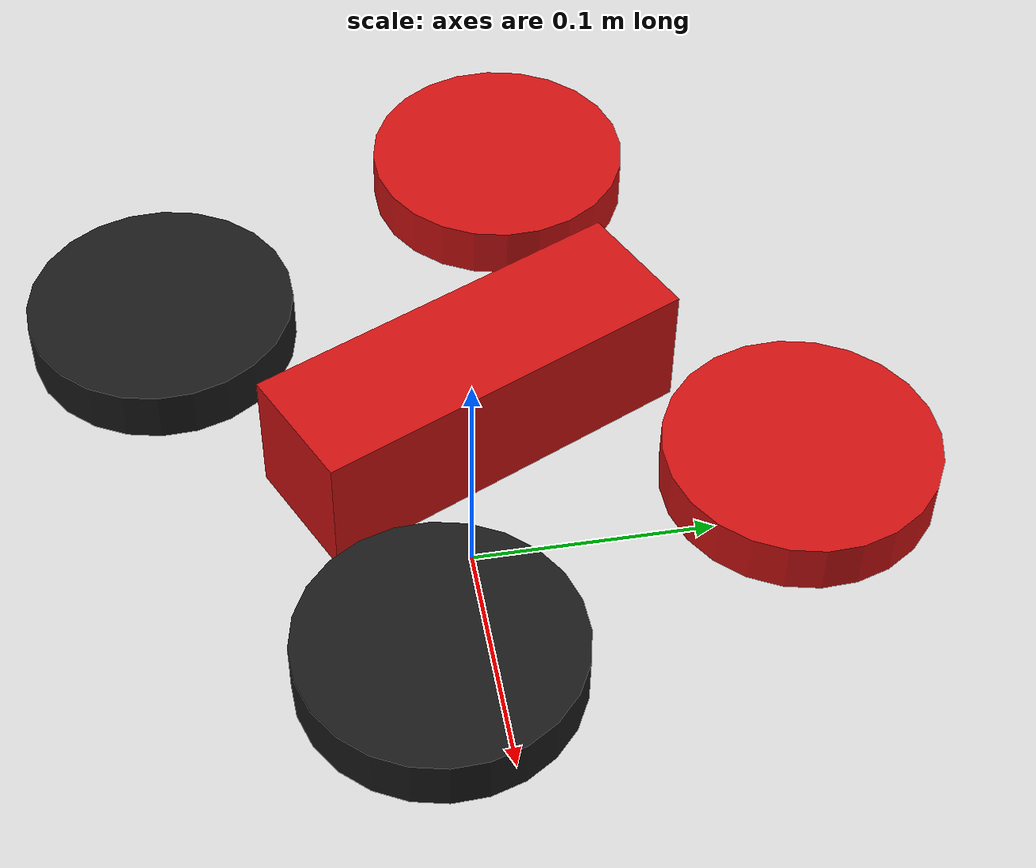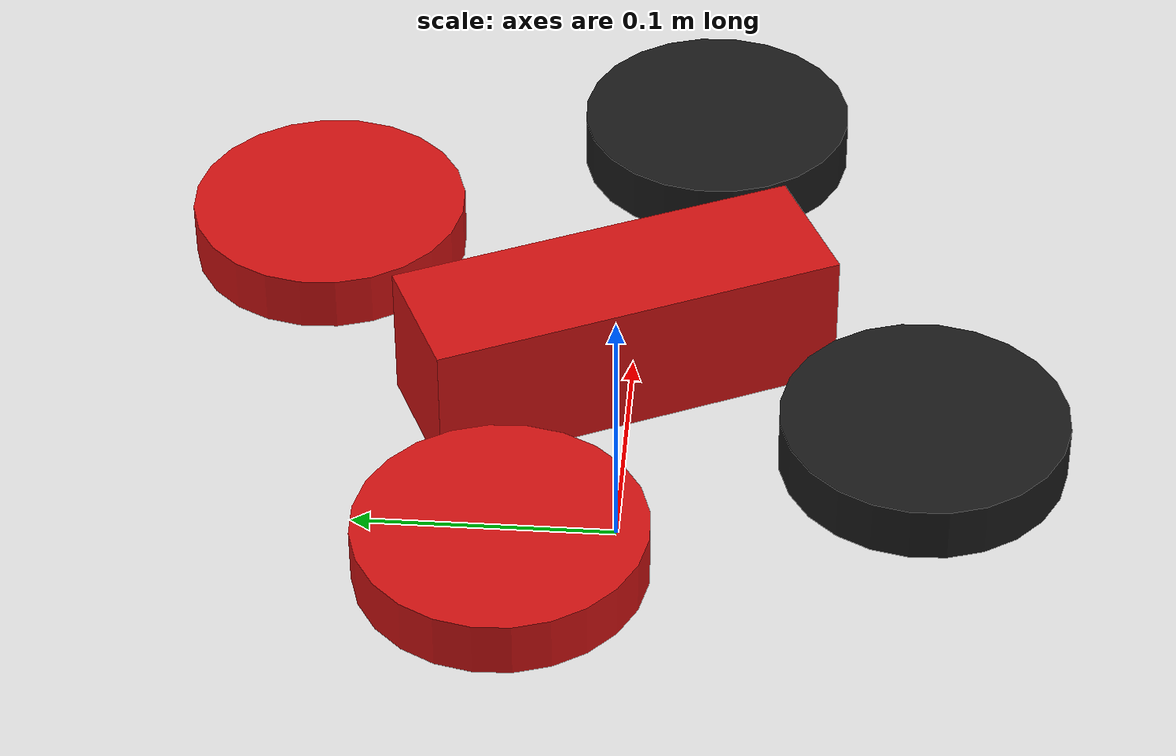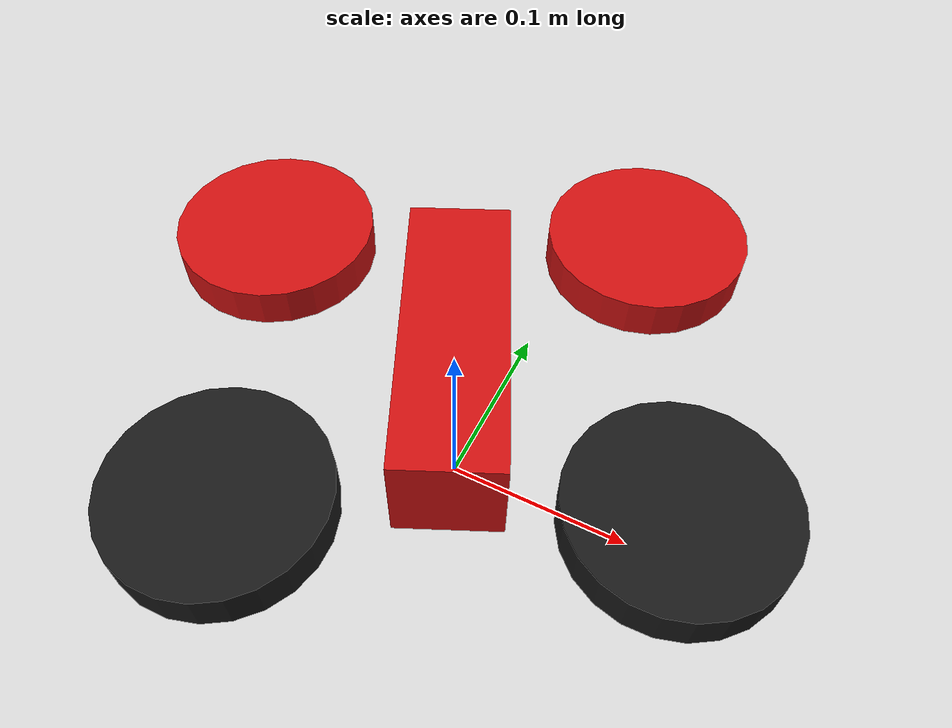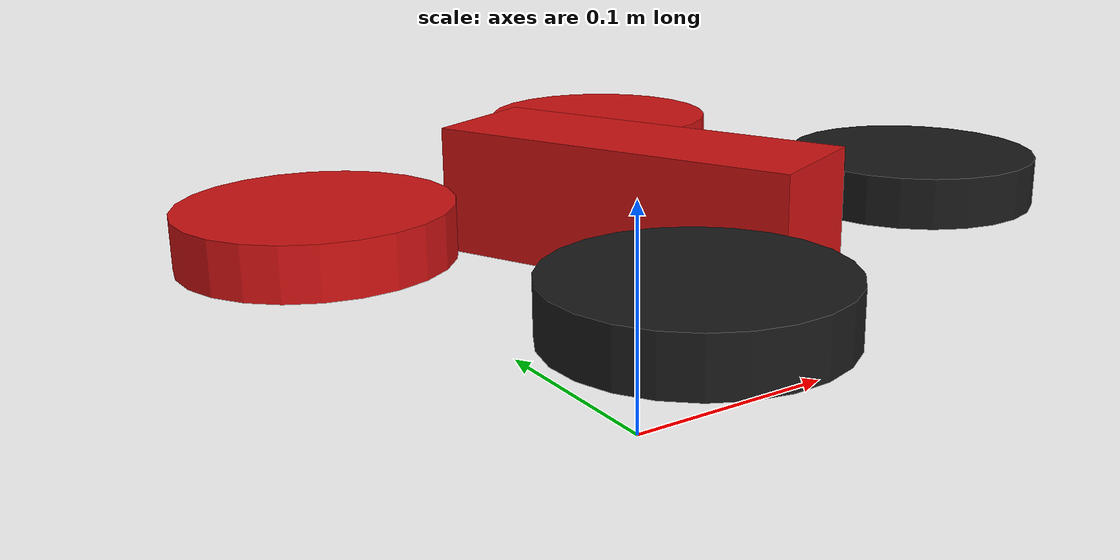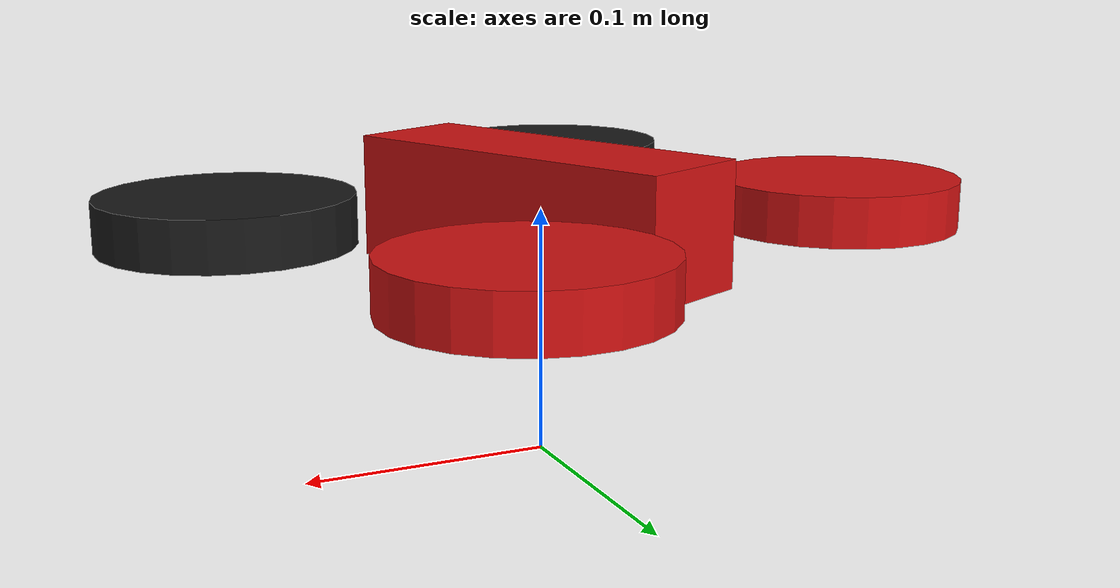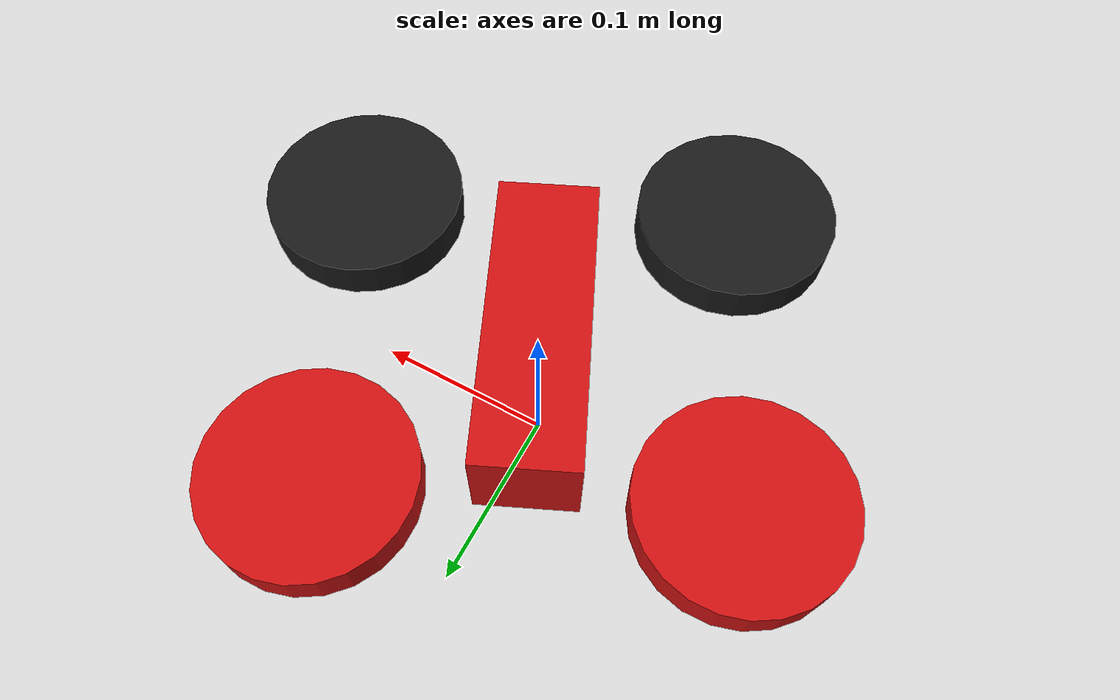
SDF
<?xml version='1.0'?>
<sdf version='1.4'>
  <model name="bebop">

    <pose>0.0 0.0 .1 0 0 2.0</pose>

    <link name="chassis">
      <velocity_decay>
        <linear>0.001</linear>
      </velocity_decay>

      <inertial>
        <mass>0.536</mass><!-- With bumpers. Tuned for correct nominal hover thrust, mass is higher than in real life (~0.40kg) -->
        <inertia>
          <ixx> 0.000906 </ixx>
          <iyy> 0.001242 </iyy>
          <izz> 0.002054 </izz>
          <ixy> 0. </ixy>
          <ixz> 0.000014 </ixz>
          <iyz> 0. </iyz>
        </inertia>
      </inertial>

      <collision name="collision">
        <geometry>
          <box>
            <size>0.4 0.4 0.05</size>
          </box>
        </geometry>
      </collision>

      <visual name="visual">
        <geometry>
          <box>
            <size>0.15 0.05 0.05</size>
          </box>
        </geometry>
        <material>
          <diffuse>0.82 0.07 0.07 1</diffuse>
          <ambient>0.82 0.07 0.07 1</ambient>
        </material>
      </visual>

      <sensor name="contactsensor" type="contact">
        <contact>
          <collision>collision</collision>
        </contact>
      </sensor>
    </link>

    <!-- MOTORS -->
    <link name="nw_motor">
      <pose>0.077 0.095 0 0 0 0</pose>
      <inertial>
        <mass>0.01</mass>
        <inertia>
          <ixx>0.0001</ixx>
          <iyy>0.0001</iyy>
          <izz>0.0001</izz>
          <ixy>0</ixy>
          <iyz>0</iyz>
          <ixz>0</ixz>
        </inertia>
      </inertial>
      <visual name="visual">
        <geometry>
          <cylinder>
            <radius>0.05</radius>
            <length>0.02</length>
          </cylinder>
        </geometry>
        <material>
          <diffuse>0.82 0.07 0.07 1</diffuse>
          <ambient>0.82 0.07 0.07 1</ambient>
        </material>
      </visual>
    </link>

    <joint type="fixed" name="nw_motor_joint">
      <parent>chassis</parent>
      <child>nw_motor</child>
    </joint>

    <link name="se_motor">
      <pose>-0.077 -0.095 0 0 0 0</pose>
      <inertial>
        <mass>0.01</mass>
        <inertia>
          <ixx>0.0001</ixx>
          <iyy>0.0001</iyy>
          <izz>0.0001</izz>
          <ixy>0</ixy>
          <iyz>0</iyz>
          <ixz>0</ixz>
        </inertia>
      </inertial>
      <visual name="visual">
        <geometry>
          <cylinder>
            <radius>0.05</radius>
            <length>0.02</length>
          </cylinder>
        </geometry>
        <material>
          <diffuse>0.1 0.1 0.1 1</diffuse>
          <ambient>0.1 0.1 0.1 1</ambient>
        </material>
      </visual>
    </link>

    <joint type="fixed" name="se_motor_joint">
      <parent>chassis</parent>
      <child>se_motor</child>
    </joint>

    <link name="ne_motor">
      <pose>0.077 -0.095 0 0 0 0</pose>
      <inertial>
        <mass>0.01</mass>
        <inertia>
          <ixx>0.0001</ixx>
          <iyy>0.0001</iyy>
          <izz>0.0001</izz>
          <ixy>0</ixy>
          <iyz>0</iyz>
          <ixz>0</ixz>
        </inertia>
      </inertial>
      <visual name="visual">
        <geometry>
          <cylinder>
            <radius>0.05</radius>
            <length>0.02</length>
          </cylinder>
        </geometry>
        <material>
          <diffuse>0.82 0.07 0.07 1</diffuse>
          <ambient>0.82 0.07 0.07 1</ambient>
        </material>
      </visual>
    </link>

    <joint type="fixed" name="ne_motor_joint">
      <parent>chassis</parent>
      <child>ne_motor</child>
    </joint>

    <link name="sw_motor">
      <pose>-0.077 0.095 0 0 0 0</pose>
      <inertial>
        <mass>0.01</mass>
        <inertia>
          <ixx>0.0001</ixx>
          <iyy>0.0001</iyy>
          <izz>0.0001</izz>
          <ixy>0</ixy>
          <iyz>0</iyz>
          <ixz>0</ixz>
        </inertia>
      </inertial>
      <visual name="visual">
        <geometry>
          <cylinder>
            <radius>0.05</radius>
            <length>0.02</length>
          </cylinder>
        </geometry>
        <material>
          <diffuse>0.1 0.1 0.1 1</diffuse>
          <ambient>0.1 0.1 0.1 1</ambient>
        </material>
      </visual>
    </link>

    <joint type="fixed" name="sw_motor_joint">
      <parent>chassis</parent>
      <child>sw_motor</child>
    </joint>

    <!-- CAMERAS -->

    <link name="front_camera">
      <pose>0.15 0 0 -1.57 0.33 0</pose><!-- Bebop camera output is rotated 90 degrees and pitched slightly downwards -->
      <inertial>
        <mass>0.001</mass>
        <inertia>
          <ixx>0.0001</ixx>
          <iyy>0.0001</iyy>
          <izz>0.0001</izz>
          <ixy>0</ixy>
          <iyz>0</iyz>
          <ixz>0</ixz>
        </inertia>
      </inertial>
      <sensor type="wideanglecamera" name="front_camera">
        <update_rate>15.0</update_rate><!-- adjust with MT9F002_TARGET_FPS -->
        <camera name="front_camera">
          <image>
            <width>3746</width><!-- with MT9F002_OUTPUT_SCALER = 1.00, will be scaled by NPS --><!-- Reduced to 3 rad FoV for Gazebo 7 compatibility -->
            <height>3288</height>
            <format>R8G8B8</format>
          </image>
          <horizontal_fov>3.00</horizontal_fov>
          <lens>
            <type>equisolid_angle</type>
            <scale_to_hfov>true</scale_to_hfov>
            <env_texture_size>2048</env_texture_size><!-- with MT9F002_OUTPUT_SCALER = 1.00, will be scaled by NPS -->
          </lens>
          <clip>
            <near>0.01</near>
            <far>300</far>
          </clip>
          <noise>
            <type>gaussian</type>
            <!-- Noise is sampled independently per pixel on each frame. That pixel's
              noise value is added to each of its color channels, which at that point lie
              in the range [0,1]. -->
            <mean>0.0</mean>
            <stddev>0.007</stddev>
          </noise>
        </camera>
      </sensor>
    </link>

    <joint name="front_camera_joint" type="fixed">
      <parent>chassis</parent>
      <child>front_camera</child>
    </joint>

    <link name="bottom_camera">
      <pose>0 0 0 0 1.57 0</pose>
      <inertial>
        <mass>0.001</mass>
        <inertia>
          <ixx>0.0001</ixx>
          <iyy>0.0001</iyy>
          <izz>0.0001</izz>
          <ixy>0</ixy>
          <iyz>0</iyz>
          <ixz>0</ixz>
        </inertia>
      </inertial>
      <sensor type="camera" name="bottom_camera">
        <update_rate>30.0</update_rate>
        <camera name="bottom_camera">
          <horizontal_fov>0.7175</horizontal_fov>
          <image>
            <width>240</width>
            <height>240</height>
            <format>R8G8B8</format>
          </image>
          <clip>
            <near>0.02</near>
            <far>300</far>
          </clip>
          <noise>
            <type>gaussian</type>
            <!-- Noise is sampled independently per pixel on each frame. That pixel's
              noise value is added to each of its color channels, which at that point lie
              in the range [0,1]. -->
            <mean>0.0</mean>
            <stddev>0.007</stddev>
          </noise>
        </camera>
      </sensor>
    </link>

    <joint name="bottom_camera_joint" type="fixed">
      <parent>chassis</parent>
      <child>bottom_camera</child>
    </joint>
  </model>
</sdf>
